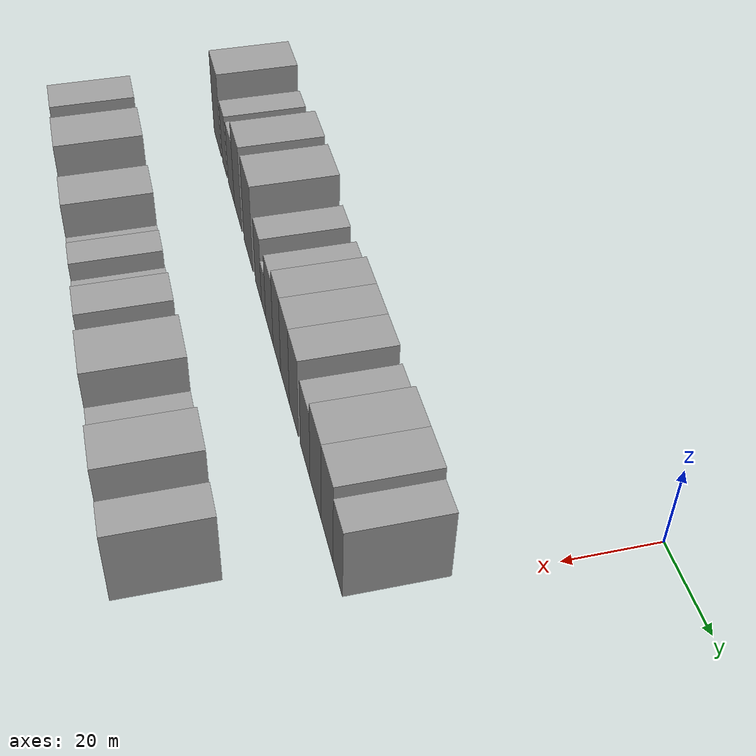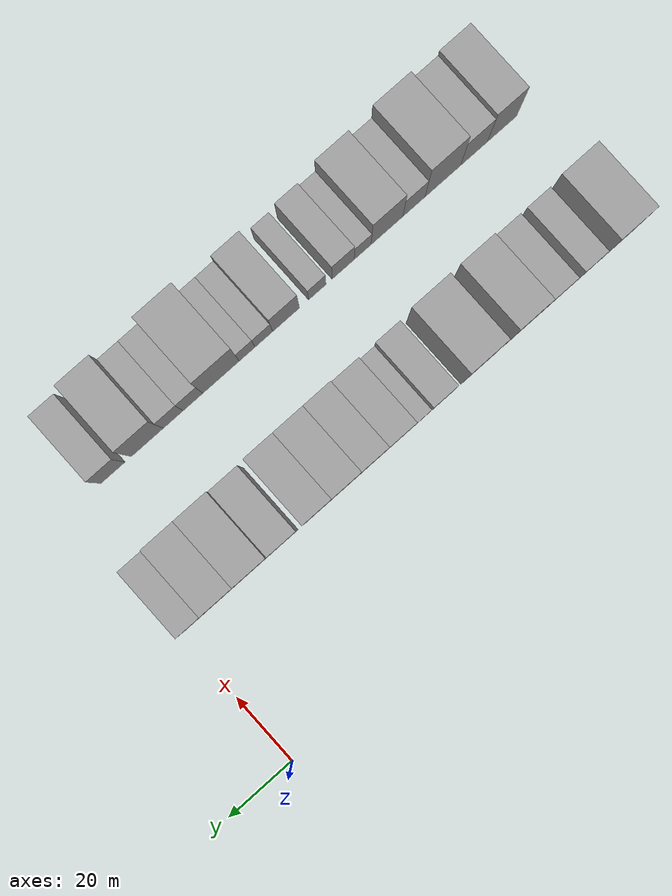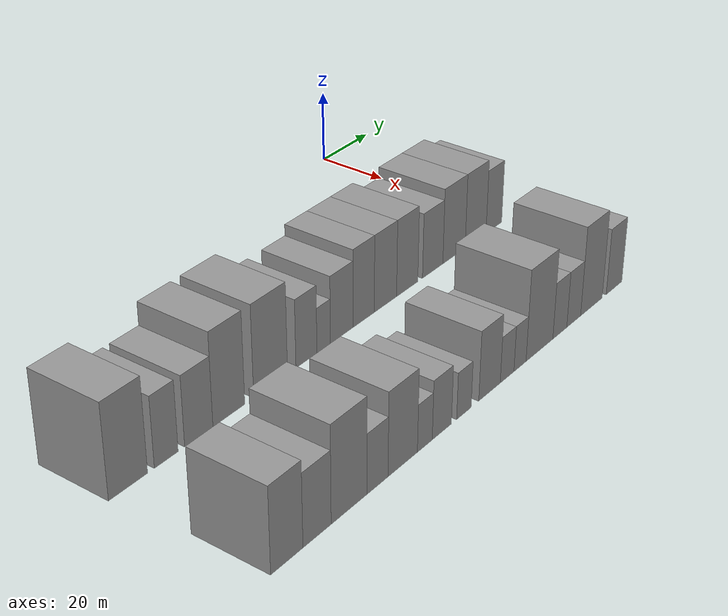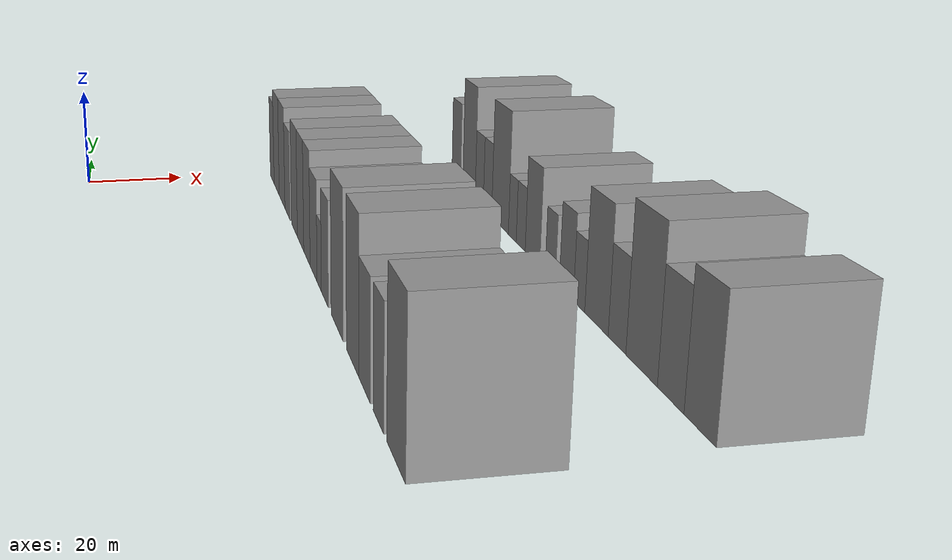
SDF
<sdf version="1.6">
 <world name="default">
  <model name="building_14">
   <static>1</static>
   <pose>50.0000 -141.3305 0 0.000000 0.000000 0.000000</pose>
   <link name="link">
    <pose>0 0 12.00 0 0 0</pose>
    <collision name="collision"><geometry><box><size>20.0000 11.3450 24.0000</size></box></geometry></collision>
    <visual name="visual">
     <cast_shadows>0</cast_shadows>
     <geometry><box><size>20.0000 11.3450 24.0000</size></box></geometry>
     <material>
      <script>
       <uri>model://grey_wall/materials/scripts</uri>
       <uri>model://grey_wall/materials/textures</uri>
       <name>vrc/grey_wall</name>
      </script>
     </material>
    </visual>
   </link>
  </model>
  <model name="building_15">
   <static>1</static>
   <pose>50.0000 -130.0443 0 0.000000 0.000000 0.000000</pose>
   <link name="link">
    <pose>0 0 9.00 0 0 0</pose>
    <collision name="collision"><geometry><box><size>20.0000 7.2274 18.0000</size></box></geometry></collision>
    <visual name="visual">
     <cast_shadows>0</cast_shadows>
     <geometry><box><size>20.0000 7.2274 18.0000</size></box></geometry>
     <material>
      <script>
       <uri>model://grey_wall/materials/scripts</uri>
       <uri>model://grey_wall/materials/textures</uri>
       <name>vrc/grey_wall</name>
      </script>
     </material>
    </visual>
   </link>
  </model>
  <model name="building_16">
   <static>1</static>
   <pose>50.0000 -119.9659 0 0.000000 0.000000 0.000000</pose>
   <link name="link">
    <pose>0 0 9.00 0 0 0</pose>
    <collision name="collision"><geometry><box><size>20.0000 8.9294 18.0000</size></box></geometry></collision>
    <visual name="visual">
     <cast_shadows>0</cast_shadows>
     <geometry><box><size>20.0000 8.9294 18.0000</size></box></geometry>
     <material>
      <script>
       <uri>model://grey_wall/materials/scripts</uri>
       <uri>model://grey_wall/materials/textures</uri>
       <name>vrc/grey_wall</name>
      </script>
     </material>
    </visual>
   </link>
  </model>
  <model name="building_17">
   <static>1</static>
   <pose>50.0000 -110.2654 0 0.000000 0.000000 0.000000</pose>
   <link name="link">
    <pose>0 0 12.00 0 0 0</pose>
    <collision name="collision"><geometry><box><size>20.0000 10.4716 24.0000</size></box></geometry></collision>
    <visual name="visual">
     <cast_shadows>0</cast_shadows>
     <geometry><box><size>20.0000 10.4716 24.0000</size></box></geometry>
     <material>
      <script>
       <uri>model://grey_wall/materials/scripts</uri>
       <uri>model://grey_wall/materials/textures</uri>
       <name>vrc/grey_wall</name>
      </script>
     </material>
    </visual>
   </link>
  </model>
  <model name="building_18">
   <static>1</static>
   <pose>50.0000 -96.1581 0 0.000000 0.000000 0.000000</pose>
   <link name="link">
    <pose>0 0 12.00 0 0 0</pose>
    <collision name="collision"><geometry><box><size>20.0000 11.7430 24.0000</size></box></geometry></collision>
    <visual name="visual">
     <cast_shadows>0</cast_shadows>
     <geometry><box><size>20.0000 11.7430 24.0000</size></box></geometry>
     <material>
      <script>
       <uri>model://grey_wall/materials/scripts</uri>
       <uri>model://grey_wall/materials/textures</uri>
       <name>vrc/grey_wall</name>
      </script>
     </material>
    </visual>
   </link>
  </model>
  <model name="building_19">
   <static>1</static>
   <pose>50.0000 -83.4580 0 0.000000 0.000000 0.000000</pose>
   <link name="link">
    <pose>0 0 9.00 0 0 0</pose>
    <collision name="collision"><geometry><box><size>20.0000 7.6573 18.0000</size></box></geometry></collision>
    <visual name="visual">
     <cast_shadows>0</cast_shadows>
     <geometry><box><size>20.0000 7.6573 18.0000</size></box></geometry>
     <material>
      <script>
       <uri>model://grey_wall/materials/scripts</uri>
       <uri>model://grey_wall/materials/textures</uri>
       <name>vrc/grey_wall</name>
      </script>
     </material>
    </visual>
   </link>
  </model>
  <model name="building_20">
   <static>1</static>
   <pose>50.0000 -77.1153 0 0.000000 0.000000 0.000000</pose>
   <link name="link">
    <pose>0 0 6.00 0 0 0</pose>
    <collision name="collision"><geometry><box><size>20.0000 5.0281 12.0000</size></box></geometry></collision>
    <visual name="visual">
     <cast_shadows>0</cast_shadows>
     <geometry><box><size>20.0000 5.0281 12.0000</size></box></geometry>
     <material>
      <script>
       <uri>model://grey_wall/materials/scripts</uri>
       <uri>model://grey_wall/materials/textures</uri>
       <name>vrc/grey_wall</name>
      </script>
     </material>
    </visual>
   </link>
  </model>
  <model name="building_21">
   <static>1</static>
   <pose>50.0000 -70.3039 0 0.000000 0.000000 0.000000</pose>
   <link name="link">
    <pose>0 0 9.00 0 0 0</pose>
    <collision name="collision"><geometry><box><size>20.0000 8.5948 18.0000</size></box></geometry></collision>
    <visual name="visual">
     <cast_shadows>0</cast_shadows>
     <geometry><box><size>20.0000 8.5948 18.0000</size></box></geometry>
     <material>
      <script>
       <uri>model://grey_wall/materials/scripts</uri>
       <uri>model://grey_wall/materials/textures</uri>
       <name>vrc/grey_wall</name>
      </script>
     </material>
    </visual>
   </link>
  </model>
  <model name="building_22">
   <static>1</static>
   <pose>50.0000 -61.7963 0 0.000000 0.000000 0.000000</pose>
   <link name="link">
    <pose>0 0 10.50 0 0 0</pose>
    <collision name="collision"><geometry><box><size>20.0000 8.4204 21.0000</size></box></geometry></collision>
    <visual name="visual">
     <cast_shadows>0</cast_shadows>
     <geometry><box><size>20.0000 8.4204 21.0000</size></box></geometry>
     <material>
      <script>
       <uri>model://grey_wall/materials/scripts</uri>
       <uri>model://grey_wall/materials/textures</uri>
       <name>vrc/grey_wall</name>
      </script>
     </material>
    </visual>
   </link>
  </model>
  <model name="building_23">
   <static>1</static>
   <pose>50.0000 -53.0342 0 0.000000 0.000000 0.000000</pose>
   <link name="link">
    <pose>0 0 10.50 0 0 0</pose>
    <collision name="collision"><geometry><box><size>20.0000 9.1038 21.0000</size></box></geometry></collision>
    <visual name="visual">
     <cast_shadows>0</cast_shadows>
     <geometry><box><size>20.0000 9.1038 21.0000</size></box></geometry>
     <material>
      <script>
       <uri>model://grey_wall/materials/scripts</uri>
       <uri>model://grey_wall/materials/textures</uri>
       <name>vrc/grey_wall</name>
      </script>
     </material>
    </visual>
   </link>
  </model>
  <model name="building_24">
   <static>1</static>
   <pose>50.0000 -44.0214 0 0.000000 0.000000 0.000000</pose>
   <link name="link">
    <pose>0 0 10.50 0 0 0</pose>
    <collision name="collision"><geometry><box><size>20.0000 8.9219 21.0000</size></box></geometry></collision>
    <visual name="visual">
     <cast_shadows>0</cast_shadows>
     <geometry><box><size>20.0000 8.9219 21.0000</size></box></geometry>
     <material>
      <script>
       <uri>model://grey_wall/materials/scripts</uri>
       <uri>model://grey_wall/materials/textures</uri>
       <name>vrc/grey_wall</name>
      </script>
     </material>
    </visual>
   </link>
  </model>
  <model name="building_25">
   <static>1</static>
   <pose>50.0000 -33.1138 0 0.000000 0.000000 0.000000</pose>
   <link name="link">
    <pose>0 0 9.00 0 0 0</pose>
    <collision name="collision"><geometry><box><size>20.0000 8.8932 18.0000</size></box></geometry></collision>
    <visual name="visual">
     <cast_shadows>0</cast_shadows>
     <geometry><box><size>20.0000 8.8932 18.0000</size></box></geometry>
     <material>
      <script>
       <uri>model://grey_wall/materials/scripts</uri>
       <uri>model://grey_wall/materials/textures</uri>
       <name>vrc/grey_wall</name>
      </script>
     </material>
    </visual>
   </link>
  </model>
  <model name="building_26">
   <static>1</static>
   <pose>50.0000 -23.6485 0 0.000000 0.000000 0.000000</pose>
   <link name="link">
    <pose>0 0 10.50 0 0 0</pose>
    <collision name="collision"><geometry><box><size>20.0000 10.0374 21.0000</size></box></geometry></collision>
    <visual name="visual">
     <cast_shadows>0</cast_shadows>
     <geometry><box><size>20.0000 10.0374 21.0000</size></box></geometry>
     <material>
      <script>
       <uri>model://grey_wall/materials/scripts</uri>
       <uri>model://grey_wall/materials/textures</uri>
       <name>vrc/grey_wall</name>
      </script>
     </material>
    </visual>
   </link>
  </model>
  <model name="building_27">
   <static>1</static>
   <pose>50.0000 -13.7559 0 0.000000 0.000000 0.000000</pose>
   <link name="link">
    <pose>0 0 10.50 0 0 0</pose>
    <collision name="collision"><geometry><box><size>20.0000 9.7480 21.0000</size></box></geometry></collision>
    <visual name="visual">
     <cast_shadows>0</cast_shadows>
     <geometry><box><size>20.0000 9.7480 21.0000</size></box></geometry>
     <material>
      <script>
       <uri>model://grey_wall/materials/scripts</uri>
       <uri>model://grey_wall/materials/textures</uri>
       <name>vrc/grey_wall</name>
      </script>
     </material>
    </visual>
   </link>
  </model>
  <model name="building_28">
   <static>1</static>
   <pose>50.0000 -5.1340 0 0.000000 0.000000 0.000000</pose>
   <link name="link">
    <pose>0 0 9.00 0 0 0</pose>
    <collision name="collision"><geometry><box><size>20.0000 7.4958 18.0000</size></box></geometry></collision>
    <visual name="visual">
     <cast_shadows>0</cast_shadows>
     <geometry><box><size>20.0000 7.4958 18.0000</size></box></geometry>
     <material>
      <script>
       <uri>model://grey_wall/materials/scripts</uri>
       <uri>model://grey_wall/materials/textures</uri>
       <name>vrc/grey_wall</name>
      </script>
     </material>
    </visual>
   </link>
  </model>
  <model name="building_79">
   <static>1</static>
   <pose>90.0000 -139.7711 0 0.000000 0.000000 0.000000</pose>
   <link name="link">
    <pose>0 0 10.50 0 0 0</pose>
    <collision name="collision"><geometry><box><size>20.0000 9.7374 21.0000</size></box></geometry></collision>
    <visual name="visual">
     <cast_shadows>0</cast_shadows>
     <geometry><box><size>20.0000 9.7374 21.0000</size></box></geometry>
     <material>
      <script>
       <uri>model://grey_wall/materials/scripts</uri>
       <uri>model://grey_wall/materials/textures</uri>
       <name>vrc/grey_wall</name>
      </script>
     </material>
    </visual>
   </link>
  </model>
  <model name="building_80">
   <static>1</static>
   <pose>90.0000 -130.4794 0 0.000000 0.000000 0.000000</pose>
   <link name="link">
    <pose>0 0 9.00 0 0 0</pose>
    <collision name="collision"><geometry><box><size>20.0000 8.8461 18.0000</size></box></geometry></collision>
    <visual name="visual">
     <cast_shadows>0</cast_shadows>
     <geometry><box><size>20.0000 8.8461 18.0000</size></box></geometry>
     <material>
      <script>
       <uri>model://grey_wall/materials/scripts</uri>
       <uri>model://grey_wall/materials/textures</uri>
       <name>vrc/grey_wall</name>
      </script>
     </material>
    </visual>
   </link>
  </model>
  <model name="building_81">
   <static>1</static>
   <pose>90.0000 -120.2114 0 0.000000 0.000000 0.000000</pose>
   <link name="link">
    <pose>0 0 12.00 0 0 0</pose>
    <collision name="collision"><geometry><box><size>20.0000 11.6898 24.0000</size></box></geometry></collision>
    <visual name="visual">
     <cast_shadows>0</cast_shadows>
     <geometry><box><size>20.0000 11.6898 24.0000</size></box></geometry>
     <material>
      <script>
       <uri>model://grey_wall/materials/scripts</uri>
       <uri>model://grey_wall/materials/textures</uri>
       <name>vrc/grey_wall</name>
      </script>
     </material>
    </visual>
   </link>
  </model>
  <model name="building_82">
   <static>1</static>
   <pose>90.0000 -110.7466 0 0.000000 0.000000 0.000000</pose>
   <link name="link">
    <pose>0 0 7.50 0 0 0</pose>
    <collision name="collision"><geometry><box><size>20.0000 7.2398 15.0000</size></box></geometry></collision>
    <visual name="visual">
     <cast_shadows>0</cast_shadows>
     <geometry><box><size>20.0000 7.2398 15.0000</size></box></geometry>
     <material>
      <script>
       <uri>model://grey_wall/materials/scripts</uri>
       <uri>model://grey_wall/materials/textures</uri>
       <name>vrc/grey_wall</name>
      </script>
     </material>
    </visual>
   </link>
  </model>
  <model name="building_83">
   <static>1</static>
   <pose>90.0000 -101.9161 0 0.000000 0.000000 0.000000</pose>
   <link name="link">
    <pose>0 0 10.50 0 0 0</pose>
    <collision name="collision"><geometry><box><size>20.0000 10.4212 21.0000</size></box></geometry></collision>
    <visual name="visual">
     <cast_shadows>0</cast_shadows>
     <geometry><box><size>20.0000 10.4212 21.0000</size></box></geometry>
     <material>
      <script>
       <uri>model://grey_wall/materials/scripts</uri>
       <uri>model://grey_wall/materials/textures</uri>
       <name>vrc/grey_wall</name>
      </script>
     </material>
    </visual>
   </link>
  </model>
  <model name="building_84">
   <static>1</static>
   <pose>90.0000 -93.9804 0 0.000000 0.000000 0.000000</pose>
   <link name="link">
    <pose>0 0 6.00 0 0 0</pose>
    <collision name="collision"><geometry><box><size>20.0000 5.4503 12.0000</size></box></geometry></collision>
    <visual name="visual">
     <cast_shadows>0</cast_shadows>
     <geometry><box><size>20.0000 5.4503 12.0000</size></box></geometry>
     <material>
      <script>
       <uri>model://grey_wall/materials/scripts</uri>
       <uri>model://grey_wall/materials/textures</uri>
       <name>vrc/grey_wall</name>
      </script>
     </material>
    </visual>
   </link>
  </model>
  <model name="building_85">
   <static>1</static>
   <pose>90.0000 -87.6593 0 0.000000 0.000000 0.000000</pose>
   <link name="link">
    <pose>0 0 7.50 0 0 0</pose>
    <collision name="collision"><geometry><box><size>20.0000 7.1920 15.0000</size></box></geometry></collision>
    <visual name="visual">
     <cast_shadows>0</cast_shadows>
     <geometry><box><size>20.0000 7.1920 15.0000</size></box></geometry>
     <material>
      <script>
       <uri>model://grey_wall/materials/scripts</uri>
       <uri>model://grey_wall/materials/textures</uri>
       <name>vrc/grey_wall</name>
      </script>
     </material>
    </visual>
   </link>
  </model>
  <model name="building_86">
   <static>1</static>
   <pose>90.0000 -79.2465 0 0.000000 0.000000 0.000000</pose>
   <link name="link">
    <pose>0 0 6.00 0 0 0</pose>
    <collision name="collision"><geometry><box><size>20.0000 5.6336 12.0000</size></box></geometry></collision>
    <visual name="visual">
     <cast_shadows>0</cast_shadows>
     <geometry><box><size>20.0000 5.6336 12.0000</size></box></geometry>
     <material>
      <script>
       <uri>model://grey_wall/materials/scripts</uri>
       <uri>model://grey_wall/materials/textures</uri>
       <name>vrc/grey_wall</name>
      </script>
     </material>
    </visual>
   </link>
  </model>
  <model name="building_87">
   <static>1</static>
   <pose>90.0000 -69.0866 0 0.000000 0.000000 0.000000</pose>
   <link name="link">
    <pose>0 0 9.00 0 0 0</pose>
    <collision name="collision"><geometry><box><size>20.0000 8.6862 18.0000</size></box></geometry></collision>
    <visual name="visual">
     <cast_shadows>0</cast_shadows>
     <geometry><box><size>20.0000 8.6862 18.0000</size></box></geometry>
     <material>
      <script>
       <uri>model://grey_wall/materials/scripts</uri>
       <uri>model://grey_wall/materials/textures</uri>
       <name>vrc/grey_wall</name>
      </script>
     </material>
    </visual>
   </link>
  </model>
  <model name="building_88">
   <static>1</static>
   <pose>90.0000 -61.8965 0 0.000000 0.000000 0.000000</pose>
   <link name="link">
    <pose>0 0 6.00 0 0 0</pose>
    <collision name="collision"><geometry><box><size>20.0000 5.6939 12.0000</size></box></geometry></collision>
    <visual name="visual">
     <cast_shadows>0</cast_shadows>
     <geometry><box><size>20.0000 5.6939 12.0000</size></box></geometry>
     <material>
      <script>
       <uri>model://grey_wall/materials/scripts</uri>
       <uri>model://grey_wall/materials/textures</uri>
       <name>vrc/grey_wall</name>
      </script>
     </material>
    </visual>
   </link>
  </model>
  <model name="building_89">
   <static>1</static>
   <pose>90.0000 -56.4812 0 0.000000 0.000000 0.000000</pose>
   <link name="link">
    <pose>0 0 6.00 0 0 0</pose>
    <collision name="collision"><geometry><box><size>20.0000 5.1366 12.0000</size></box></geometry></collision>
    <visual name="visual">
     <cast_shadows>0</cast_shadows>
     <geometry><box><size>20.0000 5.1366 12.0000</size></box></geometry>
     <material>
      <script>
       <uri>model://grey_wall/materials/scripts</uri>
       <uri>model://grey_wall/materials/textures</uri>
       <name>vrc/grey_wall</name>
      </script>
     </material>
    </visual>
   </link>
  </model>
  <model name="building_90">
   <static>1</static>
   <pose>90.0000 -48.0426 0 0.000000 0.000000 0.000000</pose>
   <link name="link">
    <pose>0 0 12.00 0 0 0</pose>
    <collision name="collision"><geometry><box><size>20.0000 11.7407 24.0000</size></box></geometry></collision>
    <visual name="visual">
     <cast_shadows>0</cast_shadows>
     <geometry><box><size>20.0000 11.7407 24.0000</size></box></geometry>
     <material>
      <script>
       <uri>model://grey_wall/materials/scripts</uri>
       <uri>model://grey_wall/materials/textures</uri>
       <name>vrc/grey_wall</name>
      </script>
     </material>
    </visual>
   </link>
  </model>
  <model name="building_91">
   <static>1</static>
   <pose>90.0000 -39.0168 0 0.000000 0.000000 0.000000</pose>
   <link name="link">
    <pose>0 0 7.50 0 0 0</pose>
    <collision name="collision"><geometry><box><size>20.0000 6.3110 15.0000</size></box></geometry></collision>
    <visual name="visual">
     <cast_shadows>0</cast_shadows>
     <geometry><box><size>20.0000 6.3110 15.0000</size></box></geometry>
     <material>
      <script>
       <uri>model://grey_wall/materials/scripts</uri>
       <uri>model://grey_wall/materials/textures</uri>
       <name>vrc/grey_wall</name>
      </script>
     </material>
    </visual>
   </link>
  </model>
  <model name="building_92">
   <static>1</static>
   <pose>90.0000 -32.6636 0 0.000000 0.000000 0.000000</pose>
   <link name="link">
    <pose>0 0 7.50 0 0 0</pose>
    <collision name="collision"><geometry><box><size>20.0000 6.3954 15.0000</size></box></geometry></collision>
    <visual name="visual">
     <cast_shadows>0</cast_shadows>
     <geometry><box><size>20.0000 6.3954 15.0000</size></box></geometry>
     <material>
      <script>
       <uri>model://grey_wall/materials/scripts</uri>
       <uri>model://grey_wall/materials/textures</uri>
       <name>vrc/grey_wall</name>
      </script>
     </material>
    </visual>
   </link>
  </model>
  <model name="building_93">
   <static>1</static>
   <pose>90.0000 -24.3247 0 0.000000 0.000000 0.000000</pose>
   <link name="link">
    <pose>0 0 12.00 0 0 0</pose>
    <collision name="collision"><geometry><box><size>20.0000 10.2824 24.0000</size></box></geometry></collision>
    <visual name="visual">
     <cast_shadows>0</cast_shadows>
     <geometry><box><size>20.0000 10.2824 24.0000</size></box></geometry>
     <material>
      <script>
       <uri>model://grey_wall/materials/scripts</uri>
       <uri>model://grey_wall/materials/textures</uri>
       <name>vrc/grey_wall</name>
      </script>
     </material>
    </visual>
   </link>
  </model>
  <model name="building_94">
   <static>1</static>
   <pose>90.0000 -13.3192 0 0.000000 0.000000 0.000000</pose>
   <link name="link">
    <pose>0 0 9.00 0 0 0</pose>
    <collision name="collision"><geometry><box><size>20.0000 7.7287 18.0000</size></box></geometry></collision>
    <visual name="visual">
     <cast_shadows>0</cast_shadows>
     <geometry><box><size>20.0000 7.7287 18.0000</size></box></geometry>
     <material>
      <script>
       <uri>model://grey_wall/materials/scripts</uri>
       <uri>model://grey_wall/materials/textures</uri>
       <name>vrc/grey_wall</name>
      </script>
     </material>
    </visual>
   </link>
  </model>
 </world>
</sdf>
